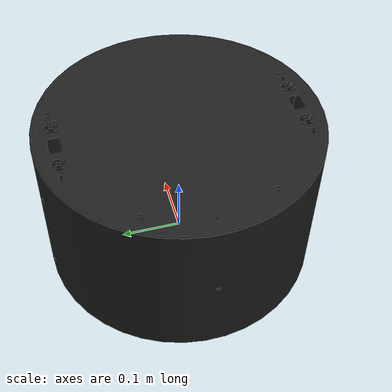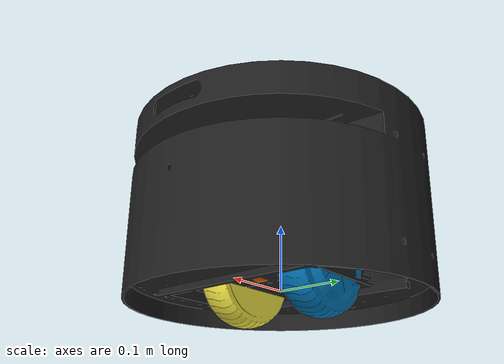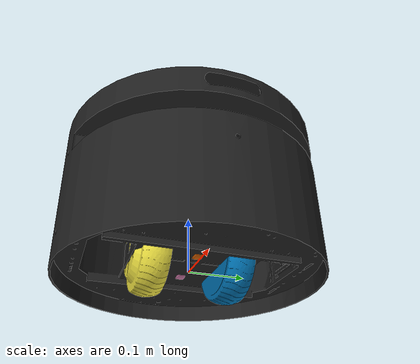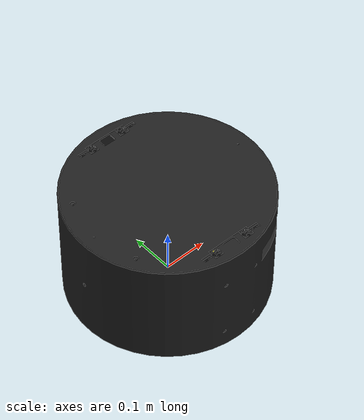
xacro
<?xml version="1.0"?>

<robot xmlns:xacro="http://www.ros.org/wiki/xacro" name="my_robot">

    <xacro:arg name="is_ignition" default="true"/>
    <!-- Include gazebo parameters -->
    <xacro:include filename="$(find robot_description)/urdf/bumperbot_gazebo.xacro"/>
    <xacro:include filename="$(find robot_description)/urdf/common_properties.xacro"/>
    <xacro:include filename="$(find robot_description)/urdf/camera.xacro"/>
    <!-- ROS2 control -->
    <xacro:include filename="$(find robot_description)/urdf/bumperbot_ros2_control.xacro"/>

    <link name="base_footprint"/>

    <link name="base_link">
        <inertial>
            <origin xyz="0.0 0.0 0.04" rpy="0.0 0.25 0.3"/>
            <mass value="8.2573504e-01"/>
            <inertia ixx="2.2124416e-02" ixy="-1.2294101e-04" ixz="3.4938785e-04"
                     iyy="2.1193702e-02" iyz="-5.0120904e-05"
                     izz="2.0064271e-02"/>
        </inertial>

        <visual>
            <origin rpy="0 0 0" xyz = "0 0 0"/>
            <geometry>
                <mesh filename="file://$(find robot_description)/meshes/base_link.STL"/>
            </geometry>
        </visual>
        <collision>
            <origin rpy="0 0 0" xyz = "0 0 0"/>
            <geometry>
                <mesh filename="file://$(find robot_description)/meshes/base_link.STL"/>

            </geometry>
        </collision>

    </link>

    <joint name="base_joint" type="fixed">
        <parent link="base_footprint"/>
        <child link="base_link"/>
        <origin rpy="0 0 0 " xyz="0 0 0.033"/>
    </joint>

    <!-- right wheel link and joint -->
    <link name="wheel_right_link">
        <inertial>
            <origin xyz="0 -0.014 0" rpy="0.0 0.0 0.0"/>
            <mass value="0.0530086090966721"/>
            <inertia ixx="1.88176298336665e-05" ixy="-4.8444933029987e-10" ixz="1.55163708851143e-08"
                     iyy="3.11510738647764e-05" iyz="-6.93560663069607e-11"
                     izz="1.8801969558182e-05"/>
        </inertial>

        <visual >
            <origin xyz="0 0.0 0.0" rpy="1.57 0.0 0.0"/>
            <geometry>
                <mesh filename="file://$(find robot_description)/meshes/wheel_right_link.STL"/>

            </geometry>
        </visual>
        <collision>
            <origin xyz="0.0 -0.015 0.0" rpy="1.57 0.0 0.0"/>
            <geometry>
                <sphere radius="0.033"/>
            </geometry>
        </collision>
    </link>
    <joint name="wheel_right_joint" type="continuous">
        <parent link="base_link"/>
        <child link="wheel_right_link"/>
        <origin xyz="0.0 -0.07 0.0" rpy="0.0 0.0 0.0"/>
        <axis xyz="0.0 1 0.0"/>
    </joint>

    <!-- left wheel link and joint -->
    <link name="wheel_left_link">
        <inertial>
            <origin xyz="0.0 0.014 0.0" rpy="0.0 0.0 0.0"/>
            <mass value="0.0530086043217644"/>
            <inertia ixx="1.8792911368909e-05" ixy="3.31256392204584e-10" ixz="-1.14082001665767e-08"
                    iyy="3.11510738759073e-05" iyz="-3.60499245082192e-10"
                    izz="1.88266886146847e-05"/>
        </inertial>

        <visual >
            <origin xyz="0 0.0 0.0" rpy="-1.57 0.0 0.0"/>
            <geometry>
                <mesh filename="file://$(find robot_description)/meshes/wheel_left_link.STL"/>

            </geometry>
        </visual>
        <collision>
            <origin xyz="0.0 0.015 0.0" rpy="1.57 0.0 0.0"/>
            <geometry>
                <sphere radius="0.033"/>
            </geometry>
        </collision>
    </link>
    <joint name="wheel_left_joint" type="continuous">
        <parent link="base_link"/>
        <child link="wheel_left_link"/>
        <origin xyz="0.0 0.07 0.0" rpy="0.0 0.0 0.0"/>
        <axis xyz="0.0 1 0.0"/>
    </joint>

    <!-- caster wheel front link -->
    <link name="caster_front_link">
       <inertial>
        <origin xyz="3.89968128948481e-07 2.40073004698083e-07 0.00219173397061506" rpy="0.0 0.0 0.0"/>
        <mass value="1.44379565037903e-06"/>
        <inertia ixx="7.23075276010246e-11" ixy="-6.10956883467859e-16" ixz="2.22849693525031e-15"
                 iyy="3.8713793085917e-11" iyz="2.93909858781952e-15"
                 izz="1.00967486676306e-10"/>
       </inertial>

       <visual>
           <origin xyz="0.0 0.0 0.0" rpy="0.0 0.0 0.0"/>
           <geometry>
                <mesh filename="file://$(find robot_description)/meshes/caster_front_link.STL"/>

            </geometry>
        </visual>
        <collision>
            <origin xyz="0.0 0.0 0.0" rpy="0.0 0.0 0.0"/>
            <geometry>
                <sphere radius="0.005"/>
            </geometry>
        </collision>

    </link>

    <joint name="caster_front_joint" type="fixed">
        <parent link="base_link"/>
        <child link="caster_front_link"/>
        <origin xyz="0.04755 0 -0.0275" rpy="0.0 0.0 0.0"/>
    </joint>

    <!-- caster wheel rear link -->
    <link name="caster_rear_link">
        <inertial>
            <origin xyz="3.8996812895542e-07 2.40073004698083e-07 0.00219173397061509" rpy="0.0 0.0 0.0"/>
            <mass value="1.44379265037902e-06"/>
            <inertia ixx="7.23075276010246e-11" ixy="-6.10956872363424e-16" ixz="2.22849693527207e-15"
                    iyy="3.89137930859167e-11" iyz="2.939098587861e-15"
                    izz="1.00967486676306e-10"/>
        </inertial>

        <visual>
            <origin xyz="0.0 0.0 0.0" rpy="0.0 0.0 0.0"/>
            <geometry>
                <mesh filename="file://$(find robot_description)/meshes/caster_rear_link.STL"/>

            </geometry>
        </visual>
        <collision>
            <origin xyz="0.0 0.0 0.0" rpy="0.0 0.0 0.0"/>
            <geometry>
                <sphere radius="0.005"/>
            </geometry>
        </collision>

    </link>

    <joint name="caster_rear_joint" type="fixed">
        <parent link="base_link"/>
        <child link="caster_rear_link"/>
        <origin xyz="-0.04755 0 -0.0275" rpy="0.0 0.0 0.0"/>
    </joint>

</robot>

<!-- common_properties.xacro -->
<robot xmlns:xacro="http://www.ros.org/wiki/xacro">

<xacro:macro name="box_inertia" params="m x y z o_xyz o_rpy">
    <inertial>
        <mass value="${m}"/>
        <origin xyz="${o_xyz}" rpy = "${o_rpy}"/>
        <inertia ixx="${(m/12) * (y*y + z*z)}" ixy="0" ixz="0"
                 iyy="${(m/12) * (x*x + z*z)}" iyz="0"
                 izz="${(m/12) * (x*x + y*y)}"/>
    </inertial>
</xacro:macro>
</robot>

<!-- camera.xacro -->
<robot xmlns:xacro="http://www.ros.org/wiki/xacro">
    <!-- camera link -->
    <xacro:property name="camera_length" value="0.005" />
    <xacro:property name="camera_width" value="0.03" />
    <xacro:property name="camera_height" value="0.02" />

     <link name="camera_link">
        <visual>
            <origin xyz="0 0 0" rpy="0 0 0" />
            <geometry>
                <box size="${camera_length} ${camera_width} ${camera_height}" />
            </geometry>
            <material name="blue">
                <color rgba="0 0 1 1" />
            </material>
        </visual>
        <collision>
            <geometry>
                <box size="${camera_length} ${camera_width} ${camera_height}" />
            </geometry>
        </collision>
        <xacro:box_inertia m="0.1" x="${camera_length}" y="${camera_width}" z="${camera_height}"
                            o_xyz="0 0 0" o_rpy="0 0 0 "/>
    </link>

    <joint name="base_camera_joint" type="fixed">
        <parent link="base_link" />
        <child link="camera_link" />
        <origin xyz="0.07 0 0.07" rpy="0 0 0" />
    </joint>

    <!-- gazebo plugin for camera -->
     <gazebo reference = "camera_link">
        <material>Gazebo/Blue</material>
        <sensor name = "camera_sensor" type="camera">
            <pose>0 0 0 0 0 0 </pose>
            <visualize>false</visualize>
            <update_rate>10.0</update_rate>

            <camera name="head">
                <horizontal_fov>1.3962634</horizontal_fov>
                <image>
                <width>1280</width>
                <height>720</height>
                <format>R8G8B8</format>
                </image>
                <clip>
                <near>0.01</near>
                <far>5</far>
                </clip>
                <noise>
                <type>gaussian</type>
                <mean>0.0</mean>
                <stddev>0.007</stddev>
                </noise>
            </camera>
            <plugin name="camera_controller" filename="libgazebo_ros_camera.so">
                <alwaysOn>true</alwaysOn>
                <updateRate>0.0</updateRate>
                <cameraName>my_robot/camera1</cameraName>
                <imageTopicName>image_raw</imageTopicName>
                <cameraInfoTopicName>camera_info</cameraInfoTopicName>
                <frameName>camera_link</frameName>
                <hackBaseline>0.07</hackBaseline>
                <distortionK1>0.0</distortionK1>
                <distortionK2>0.0</distortionK2>
                <distortionK3>0.0</distortionK3>
                <distortionT1>0.0</distortionT1>
                <distortionT2>0.0</distortionT2>
            </plugin>
        </sensor>

     </gazebo>
</robot>
